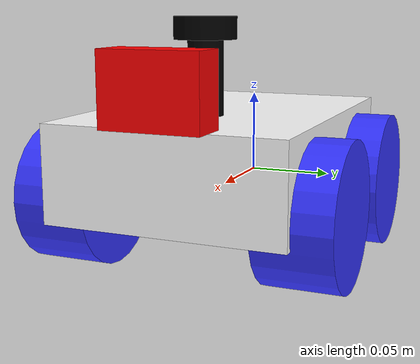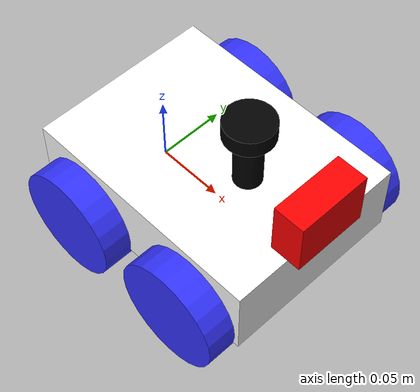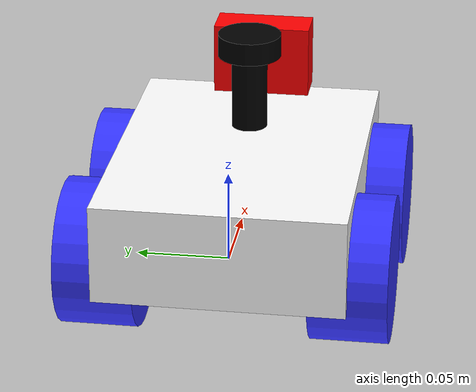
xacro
<?xml version="1.0"?>
<robot xmlns:xacro="http://www.ros.org/wiki/xacro"  name="robot">

    <xacro:include filename="robot_core.xacro" />

    <xacro:include filename="ros2_control.xacro"/>

    <xacro:include filename="lidar.xacro" />

    <xacro:include filename="camera.xacro" />

</robot>

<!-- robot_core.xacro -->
<robot name="basic_mobile_bot" xmlns:xacro="http://ros.org/wiki/xacro">

    <xacro:include filename="inertial_macros.xacro"/>

    <!-- ****************** ROBOT CONSTANTS *******************************  -->
    <!-- Define the size of the robot's main chassis in meters -->

    <!-- Define the shape of the robot's two back wheels in meters -->

    <!-- x-axis points forward, y-axis points to left, z-axis points upwards -->
    <!-- Define the gap between the wheel and chassis along y-axis in meters -->

    <!-- Position the wheels along the z-axis -->

    <!-- Position the wheels along the x-axis -->

    <!-- Position the caster wheel along the x-axis -->

    <!-- Color -->
    <material name="white">
        <color rgba="1 1 1 1" />
    </material>

    <material name="orange">
        <color rgba="1 0.3 0.1 1"/>
    </material>

    <material name="blue">
        <color rgba="0.2 0.2 1 1"/>
    </material>

    <material name="black">
        <color rgba="0 0 0 1"/>
    </material>

    <material name="red">
        <color rgba="1 0 0 1"/>
    </material>

    <!-- BASE LINK *********************************************************  -->
    <!-- Define the center of the main robot chassis projected on the ground -->
    <link name="base_link">
    </link>

    <!-- BASE FOOTPRINT ****************************************************  -->
    <joint name="base_footprint_joint" type="fixed">
        <parent link="base_link"/>
        <child link="base_footprint"/>
        <origin xyz="0 0 0" rpy="0 0 0"/>
    </joint>

    <link name="base_footprint">
    </link>

    <!-- CHASSIS ***********************************************************  -->
    <joint name="chassis_joint" type="fixed">
        <parent link="base_link"/>
        <child link="chassis" />
        <origin xyz="-0.043 0 0"/>
    </joint>

    <link name="chassis">
        <visual>
            <origin xyz="0.0915 0 0.0181"/>
            <geometry>
                <box size="0.183 0.136 0.0548"/>
            </geometry>
            <material name="white"/>
        </visual>

        <collision>
            <origin xyz="0.0915 0 0.0181"/>
            <geometry>
                <box size="0.183 0.136 0.0548"/>
            </geometry>
        </collision>

        <xacro:inertial_box mass="0.7" x="0.183" y="0.136" z="0.0548">
            <origin xyz="0.0915 0 0.0181" rpy="0 0 0"/>
        </xacro:inertial_box>
    </link>

    <gazebo reference="chassis">
        <material>Gazebo/White</material>
    </gazebo>

    <!-- DRIVE WHEELS *****************************************************  -->
    <!-- LEFT FRONT WHEEL -->
    <joint name="left_front_wheel_joint" type="continuous">
        <parent link="base_link"/>
        <child link="left_front_wheel"/>
        <origin xyz="0.097 0.068 0" rpy="-${pi/2} 0 0"/>
        <axis xyz="0 0 1"/>
    </joint>

    <link name="left_front_wheel">
        <visual>
            <origin xyz="0 0 0"/>
            <geometry>
                <cylinder radius="0.04" length="0.0425"/>
            </geometry>
            <material name="blue"/>
        </visual>

        <collision>
            <origin xyz="0 0 0"/>
            <geometry>
                <cylinder radius="0.04" length="0.0425"/>
            </geometry>
        </collision>

        <xacro:inertial_cylinder mass="0.04" radius="0.04" length="0.0425">
            <origin xyz="0 0 0" rpy="0 0 0"/>
        </xacro:inertial_cylinder>
    </link>

    <gazebo reference="left_front_wheel">
        <material>Gazebo/Blue</material>
    </gazebo>

    <!-- RIGHT FRONT WHEEL -->
    <joint name="right_front_wheel_joint" type="continuous">
        <parent link="base_link"/>
        <child link="right_front_wheel"/>
        <origin xyz="0.097 -0.068 0" rpy="${pi/2} 0 0"/>
        <axis xyz="0 0 -1"/>
    </joint>

    <link name="right_front_wheel">
        <visual>
            <origin xyz="0 0 0"/>
            <geometry>
                <cylinder radius="0.04" length="0.0425"/>
            </geometry>
            <material name="blue"/>
        </visual>

        <collision>
            <origin xyz="0 0 0"/>
            <geometry>
                <cylinder radius="0.04" length="0.0425"/>
            </geometry>
        </collision>

        <xacro:inertial_cylinder mass="0.04" radius="0.04" length="0.0425">
            <origin xyz="0 0 0" rpy="0 0 0"/>
        </xacro:inertial_cylinder>
    </link>

    <gazebo reference="right_front_wheel">
        <material>Gazebo/Blue</material>
    </gazebo>

    <!-- LEFT REAR WHEEL -->
    <joint name="left_rear_wheel_joint" type="continuous">
        <parent link="base_link"/>
        <child link="left_rear_wheel"/>
        <origin xyz="0 0.068 0" rpy="-${pi/2} 0 0"/>
        <axis xyz="0 0 1"/>
    </joint>

    <link name="left_rear_wheel">
        <visual>
            <origin xyz="0 0 0"/>
            <geometry>
                <cylinder radius="0.04" length="0.0425"/>
            </geometry>
            <material name="blue"/>
        </visual>

        <collision>
            <origin xyz="0 0 0"/>
            <geometry>
                <cylinder radius="0.04" length="0.0425"/>
            </geometry>
        </collision>

        <xacro:inertial_cylinder mass="0.04" radius="0.04" length="0.0425">
            <origin xyz="0 0 0" rpy="0 0 0"/>
        </xacro:inertial_cylinder>
    </link>

    <gazebo reference="left_rear_wheel">
        <material>Gazebo/Blue</material>
    </gazebo>

    <!-- RIGHT REAR WHEEL -->
    <joint name="right_rear_wheel_joint" type="continuous">
        <parent link="base_link"/>
        <child link="right_rear_wheel"/>
        <origin xyz="0 -0.068 0" rpy="${pi/2} 0 0"/>
        <axis xyz="0 0 -1"/>
    </joint>

    <link name="right_rear_wheel">
        <visual>
            <origin xyz="0 0 0"/>
            <geometry>
                <cylinder radius="0.04" length="0.0425"/>
            </geometry>
            <material name="blue"/>
        </visual>

        <collision>
            <origin xyz="0 0 0"/>
            <geometry>
                <cylinder radius="0.04" length="0.0425"/>
            </geometry>
        </collision>

        <xacro:inertial_cylinder mass="0.04" radius="0.04" length="0.0425">
            <origin xyz="0 0 0" rpy="0 0 0"/>
        </xacro:inertial_cylinder>
    </link>

    <gazebo reference="right_rear_wheel">
        <material>Gazebo/Blue</material>
    </gazebo>

    <!-- *********************** IMU SETUP *********************************  -->
    <!-- Each sensor must be attached to a link.                              -->

    <!-- *********************** GPS SETUP **********************************  -->

</robot>

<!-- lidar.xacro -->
<robot xmlns:xacro="http://www.ros.org/wiki/xacro" >

    <joint name="laser_joint" type="fixed">
        <parent link="chassis"/>
        <child link="laser_frame"/>
        <origin xyz="0.122 0 0.094" rpy="0 0 0"/>
    </joint>

    <link name="laser_frame">
        <visual>
            <geometry>
                <cylinder radius="0.017645" length="0.0126"/>
            </geometry>
            <material name="black"/>
        </visual>
        <visual>
        <origin xyz="0 0 -0.0274" rpy="0 0 0"/>
            <geometry>
                <cylinder radius="0.01" length="0.0422"/>
            </geometry>
            <material name="black"/>
        </visual>

        <collision>
            <geometry>
                <cylinder radius="0.017645" length="0.0126"/>
            </geometry>
        </collision>

        <xacro:inertial_cylinder mass="0.1" radius="0.017645" length="0.0126">
            <origin xyz="0 0 0" rpy="0 0 0"/>
        </xacro:inertial_cylinder>
    </link>

    <gazebo reference="laser_frame">
        <material>Gazebo/Black</material>

        <sensor name="laser" type="ray">
            <pose> 0 0 0 0 0 0 </pose>
            <visualize>false</visualize>
            <update_rate>10</update_rate>
            <ray>
                <scan>
                    <horizontal>
                        <samples>360</samples>
                        <resolution>1</resolution>
                        <min_angle>-3.14</min_angle>
                        <max_angle>3.14</max_angle>
                    </horizontal>
                </scan>
                <range>
                    <min>0.3</min>
                    <max>12</max>
                    <resolution>0.01</resolution>
                </range>
            </ray>
            <plugin name="laser_controller" filename="libgazebo_ros_ray_sensor.so">
                <ros>
                    <argument>~/out:=scan</argument>
                </ros>
                <output_type>sensor_msgs/LaserScan</output_type>
                <frame_name>laser_frame</frame_name>
            </plugin>
        </sensor>
    </gazebo>

</robot>

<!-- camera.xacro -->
<robot xmlns:xacro="http://www.ros.org/wiki/xacro" >

    <joint name="camera_joint" type="fixed">
        <parent link="chassis"/>
        <child link="camera_link"/>
        <origin xyz="0.1807 0 0.0655" rpy="0 0 0"/>
    </joint>

    <link name="camera_link">
        <visual>
            <geometry>
                <box size="0.023 0.055 0.040"/>
            </geometry>
            <material name="red"/>
        </visual>
    </link>

    <joint name="camera_optical_joint" type="fixed">
        <parent link="camera_link"/>
        <child link="camera_link_optical"/>
        <origin xyz="0 0 0" rpy="${-pi/2} 0 ${-pi/2}"/>
    </joint>

    <link name="camera_link_optical"></link>

    <gazebo reference="camera_link">
        <material>Gazebo/Red</material>

        <sensor name="camera" type="camera">
            <pose> 0 0 0 0 0 0 </pose>
            <visualize>true</visualize>
            <update_rate>10</update_rate>
            <camera>
                <horizontal_fov>1.089</horizontal_fov>
                    <image>
                        <format>R8G8B8</format>
                        <width>640</width>
                        <height>480</height>
                    </image>
                    <clip>
                        <near>0.05</near>
                        <far>8.0</far>
                    </clip>
            </camera>
            <plugin name="camera_controller" filename="libgazebo_ros_camera.so">
                <frame_name>camera_link_optical</frame_name>
            </plugin>
        </sensor>
    </gazebo>

</robot>
